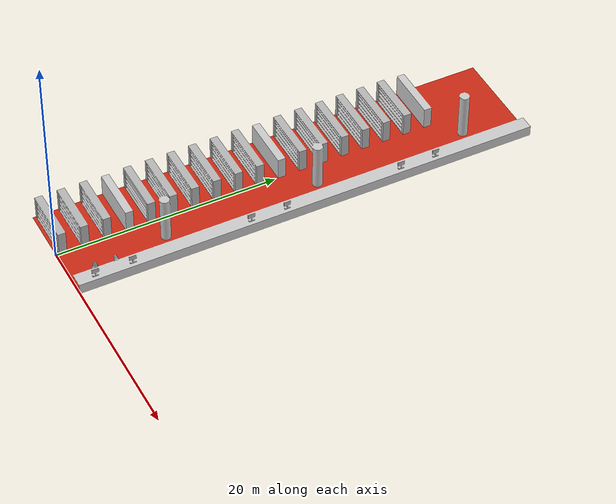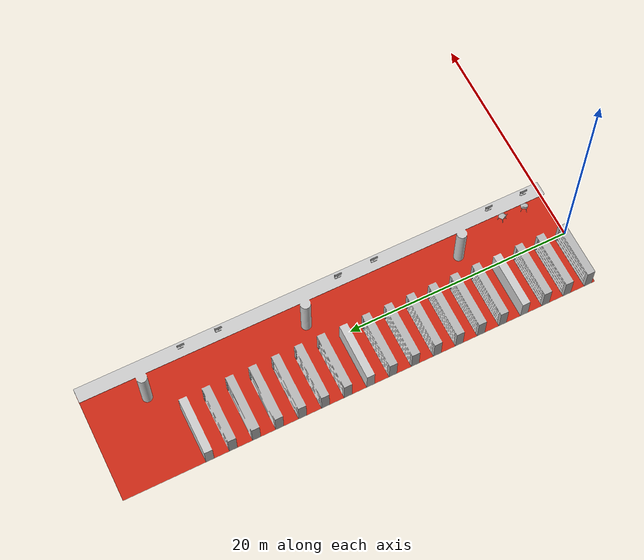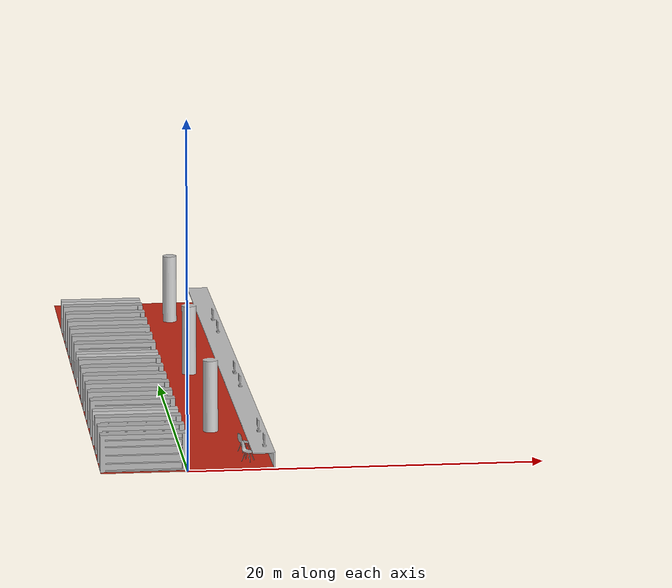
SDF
<?xml version="1.0"?>
<sdf version="1.6">
  <world name="biblioteca">
	  <scene>
		  <ambient>1 1 1 1</ambient>
		  <background>0.3 0.7 0.9 1</background>
		  <shadows>0</shadows>
		  <grid>1</grid>
	  </scene>
    <model name="chair1">
      <pose>3.45 2.0 0  0 0 89</pose>
      <static>true</static>
      <link name="body">
        <visual name="visual">
          <geometry>
            <mesh><uri>model://use_case_resources/library/meshes/chair.dae</uri></mesh>
          </geometry>
        </visual>
        <collision name="collision">
          <geometry>
            <mesh><uri>model://use_case_resources/library/meshes/chair-collision.dae</uri></mesh>
          </geometry>
        </collision>
      </link>
    </model>
    <model name="chair2">
      <pose>3.45 4.0 0  0 0 90</pose>
      <static>true</static>
      <link name="body">
        <visual name="visual">
          <geometry>
            <mesh><uri>model://use_case_resources/library/meshes/chair.dae</uri></mesh>
          </geometry>
        </visual>
        <collision name="collision">
          <geometry>
            <mesh><uri>model://use_case_resources/library/meshes/chair-collision.dae</uri></mesh>
          </geometry>
        </collision>
      </link>
    </model>
    <model name="library">
      <pose>0 0 0  0 0 0</pose>
      <static>true</static>
      <link name="main">
        <visual name="visual">
          <geometry>
            <mesh>
              <uri>model://use_case_resources/library/meshes/biblioteca-xl.dae</uri>
            </mesh>
          </geometry>
        </visual>
        <collision name="collision">
          <geometry>
            <mesh>
              <uri>model://use_case_resources/library/meshes/biblioteca-collisioni-xl.dae</uri>
            </mesh>
          </geometry>
        </collision>
      </link>
      <link name="Fan2">
          <pose>5.0154 -0.2952 6.12 0 0 0</pose>
          <light type="directional" name="fan_light">
              <diffuse>1 1 1 1</diffuse>
              <specular>0.3 0.3 0.3 1</specular>
              <attenuation>
                  <range>50</range>
                  <linear>0</linear>
                  <constant>0</constant>
                  <quadratic>0</quadratic>
              </attenuation>
              <cast_shadows>true</cast_shadows>
              <intensity>1.0</intensity>
          </light>
      </link>
      <joint name="world_joint" type="fixed">
          <parent>world</parent>
          <child>main</child>
      </joint>
      <joint name="light_joint" type="fixed">
          <parent>main</parent>
          <child>Fan2</child>
      </joint>
    </model>
  </world>
</sdf>
